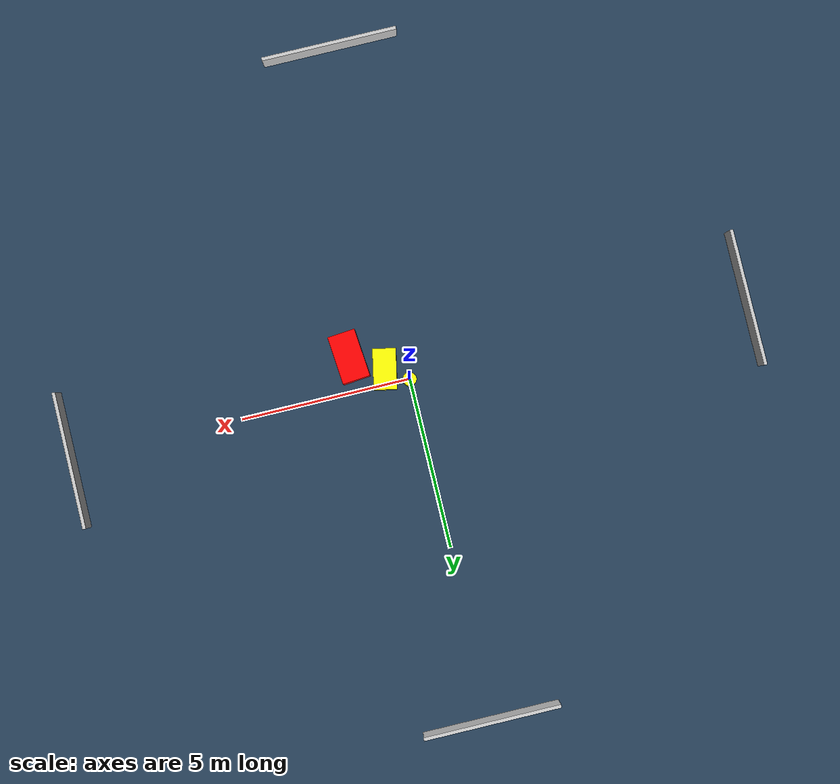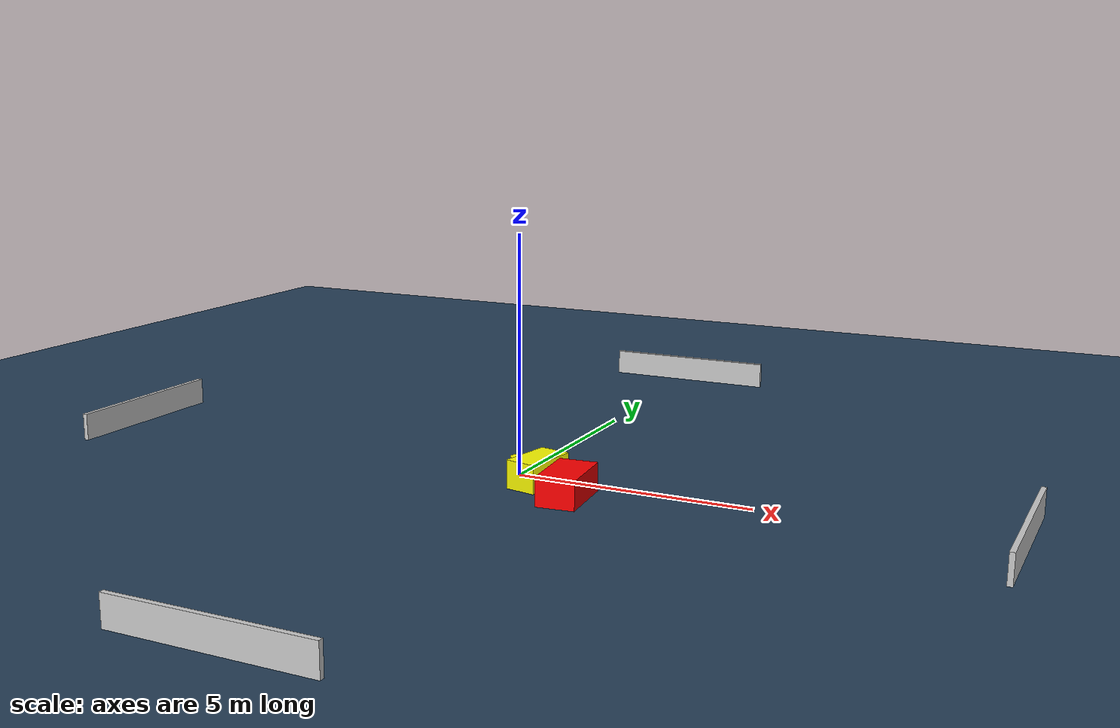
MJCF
<?xml version="1.0" ?>
<mujoco model="generated_environment">
  <option timestep="0.01" integrator="RK4" cone="elliptic"/>
  <default>
    <geom density="1"/>
  </default>
  <asset>
    <texture builtin="gradient" height="3072" name="skybox" rgb1="0.3 0.5 0.7" rgb2="0 0 0" type="skybox" width="512"/>
    <texture builtin="checker" height="300" name="groundplane" rgb1="0.2 0.3 0.4" rgb2="0.1 0.2 0.3" type="2d" width="300"/>
    <material name="groundplane" reflectance="0.2" texrepeat="5 5" texture="groundplane"/>
  </asset>
  <worldbody>
    <light dir="0 0 -1" directional="true" pos="0 0 1.5"/>
    <geom condim="3" friction="0.5 0.005 0.001" material="groundplane" name="floor" pos="0 0 0" size="0 0 0.05" type="plane"/>
    <body name="walls">
      <geom name="wall_1" condim="4" pos="-10.0 0.0 0.3" rgba="0.800000011920929 0.800000011920929 0.800000011920929 1.0" size="0.05 2.0 0.3" type="box"/>
      <geom name="wall_2" condim="4" pos="10.0 0.0 0.3" rgba="0.800000011920929 0.800000011920929 0.800000011920929 1.0" size="0.05 2.0 0.3" type="box"/>
      <geom name="wall_3" condim="4" pos="0.0 -10.0 0.3" rgba="0.800000011920929 0.800000011920929 0.800000011920929 1.0" size="2.0 0.05 0.3" type="box"/>
      <geom name="wall_4" condim="4" pos="0.0 10.0 0.3" rgba="0.800000011920929 0.800000011920929 0.800000011920929 1.0" size="2.0 0.05 0.3" type="box"/>
    </body>
    <body name="robot">
      <joint name="joint_x" type="slide" pos="0 0 0" axis="1 0 0"/>
      <joint name="joint_y" type="slide" pos="0 0 0" axis="0 1 0"/>
      <geom name="robot" type="cylinder" pos="0.0 0.0 0.2" size="0.2 0.2 0.0" mass="5.0" friction="1.0 0.005 0.0001" condim="4" rgba="1.0 1.0 0.0 1.0"/>
    </body>
    <body name="obstacle_1_movable">
      <geom name="obstacle_1_movable" condim="4" pos="0.6286455432325138 -0.4398909505944421 0.3" euler="0 0 348.6694176714389" friction="0.0 0.005 0.001" rgba="1.0 1.0 0.0 1.0" size="0.33751657861886064 0.590247846131692 0.3" type="box" mass="0.1"/>
      <joint type="free"/>
    </body>
    <body name="obstacle_2_static">
      <geom name="obstacle_2_static" condim="4" pos="1.5498533885344254 -1.0261739985191463 0.3" euler="0 0 5.210201579702929" friction="0.0 0.005 0.001" rgba="1.0 0.0 0.0 1.0" size="0.4054273358196706 0.7060393367926792 0.3" type="box"/>
    </body>
  </worldbody>
  <actuator>
    <motor name="actuator_x" joint="joint_x" gear="1" ctrlrange="-1 1"/>
    <motor name="actuator_y" joint="joint_y" gear="1" ctrlrange="-1 1"/>
  </actuator>
</mujoco>
